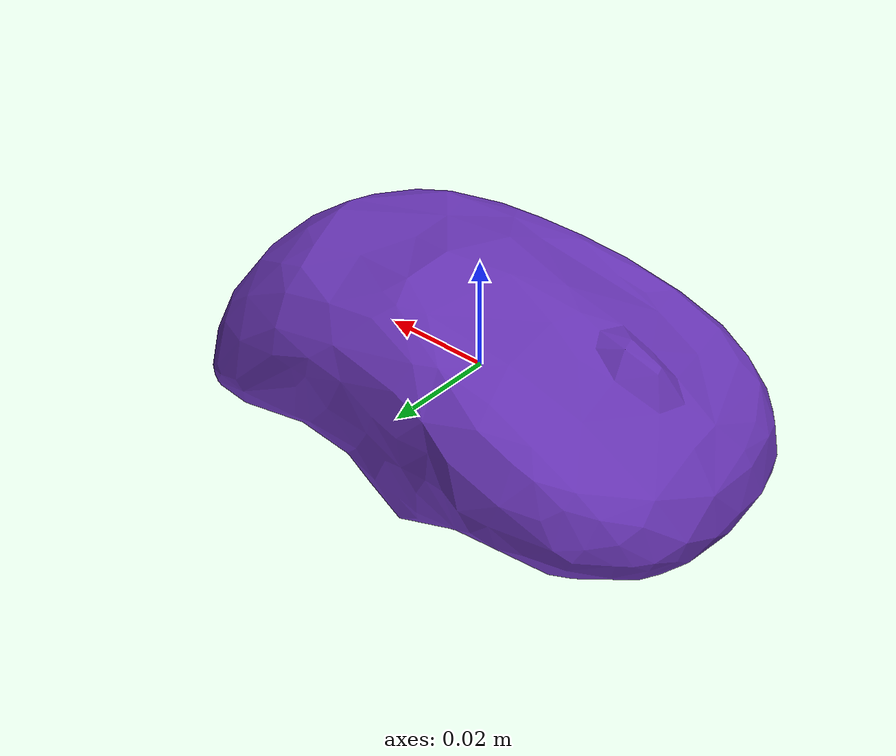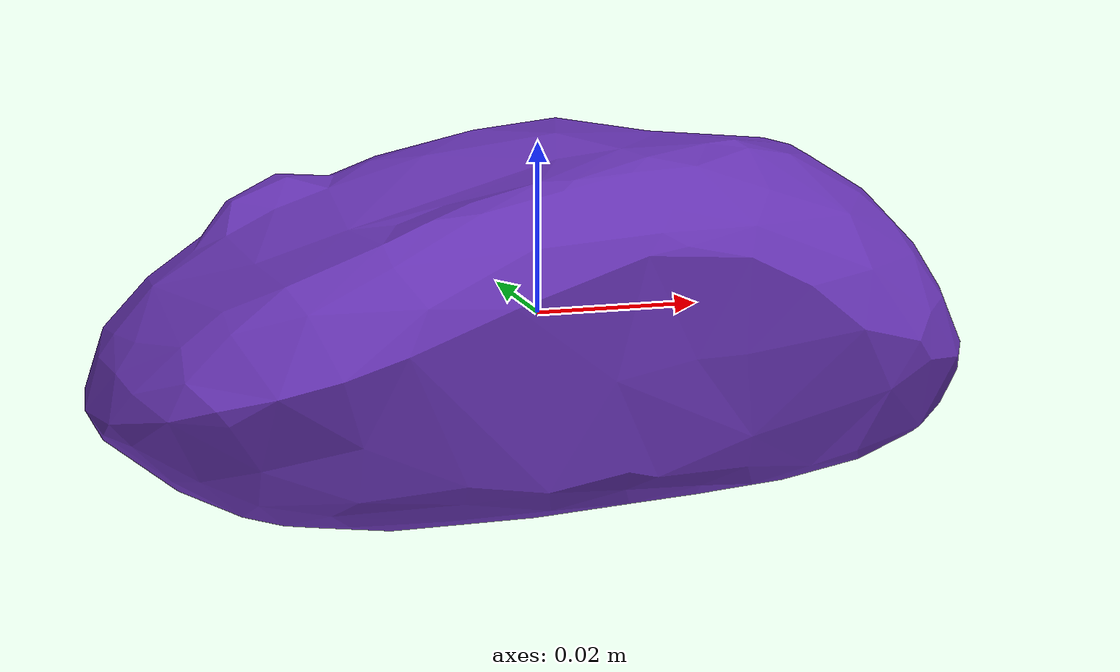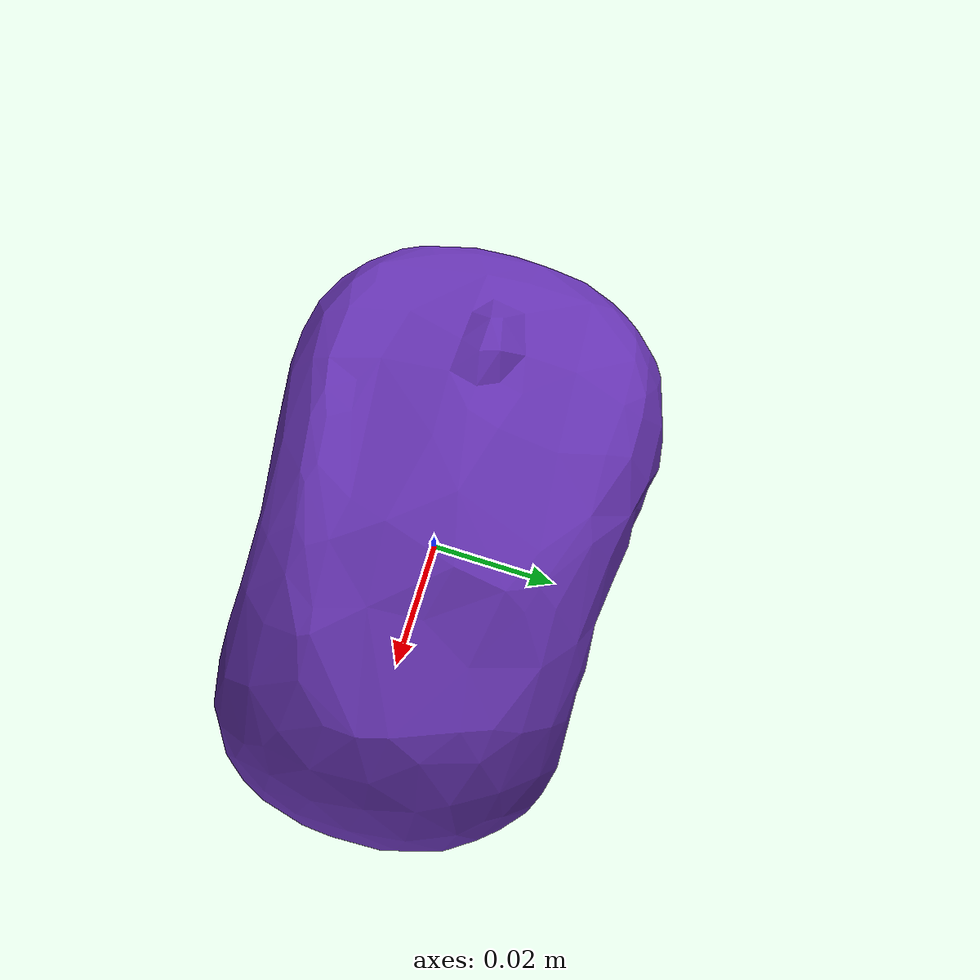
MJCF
<mujoco model="top_watertight_tiny">

  <asset>
    <mesh file="top_watertight_tiny.obj"/>
    <mesh file="top_watertight_tiny_collision_0.obj"/>
    <mesh file="top_watertight_tiny_collision_1.obj"/>
  </asset>
  <worldbody>
    <body name="top_watertight_tiny">
      <freejoint/>
      <geom solimp="0.90 0.95 0.001" solref="0.02 1.0" density="100" friction="0.95 0.4 0.3" rgba="0.4 0.2 0.7 1" mesh="top_watertight_tiny" group="2" type="mesh" contype="0" conaffinity="0"/>
      <geom solimp="0.90 0.95 0.001" solref="0.02 1.0" density="100" friction="0.95 0.4 0.3" mesh="top_watertight_tiny_collision_0" rgba="0.005493123182863324 0.5292885288649798 0.04761633572281343 1" group="3" type="mesh"/>
      <geom solimp="0.90 0.95 0.001" solref="0.02 1.0" density="100" friction="0.95 0.4 0.3" mesh="top_watertight_tiny_collision_1" rgba="0.09550600999696335 0.504889882537827 0.07510485892005381 1" group="3" type="mesh"/>
    </body>
  </worldbody>
</mujoco>
